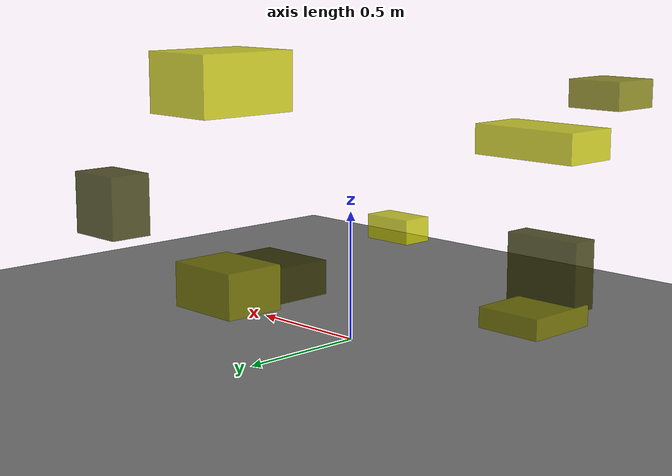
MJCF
<?xml version="1.0"?>
<mujoco model="obstacle_scene">
  <compiler angle="radian" coordinate="local"/>
  <option timestep="0.001" gravity="0 0 -9.81"/>

  <asset>
    <material name="obstacle_mat" rgba="0.8 0.8 0.0 0.8"/>
    <material name="ground_mat" rgba="0.5 0.5 0.5 1"/>
  </asset>

  <worldbody>
    <!-- Ground plane -->
    <geom name="ground" type="plane" size="3 3 0.1" material="ground_mat"/>

    <!-- Obstacles -->
    <body name="obstacle_0" pos="-0.537478 -0.533156 0.277757">
      <geom name="obs_0" type="box" size="0.160913 0.055703 0.133336" rgba="0.2 0.2 0.0 0.8"/>
    </body>
    <body name="obstacle_1" pos="0.047787 0.564764 0.301209">
      <geom name="obs_1" type="box" size="0.148810 0.116941 0.081743" rgba="0.5 0.5 0.0 0.8"/>
    </body>
    <body name="obstacle_2" pos="0.160719 0.487593 1.012753">
      <geom name="obs_2" type="box" size="0.153878 0.201328 0.110504" rgba="0.8 0.8 0.0 0.8"/>
    </body>
    <body name="obstacle_3" pos="0.899521 0.461382 0.476156">
      <geom name="obs_3" type="box" size="0.126269 0.089524 0.126881" rgba="0.2 0.2 0.0 0.8"/>
    </body>
    <body name="obstacle_4" pos="-0.570630 -0.396400 0.126790">
      <geom name="obs_4" type="box" size="0.135770 0.154452 0.040264" rgba="0.5 0.5 0.0 0.8"/>
    </body>
    <body name="obstacle_5" pos="-0.269203 0.025155 0.482086">
      <geom name="obs_5" type="box" size="0.096686 0.056485 0.043853" rgba="0.8 0.8 0.0 0.8"/>
    </body>
    <body name="obstacle_6" pos="0.518296 -0.023326 0.158373">
      <geom name="obs_6" type="box" size="0.175794 0.168623 0.071254" rgba="0.2 0.2 0.0 0.8"/>
    </body>
    <body name="obstacle_7" pos="-0.753214 -0.581604 0.962611">
      <geom name="obs_7" type="box" size="0.109048 0.104656 0.051932" rgba="0.5 0.5 0.0 0.8"/>
    </body>
    <body name="obstacle_8" pos="-0.801490 -0.117877 0.833337">
      <geom name="obs_8" type="box" size="0.203985 0.106614 0.053056" rgba="0.8 0.8 0.0 0.8"/>
    </body>
  </worldbody>
</mujoco>
